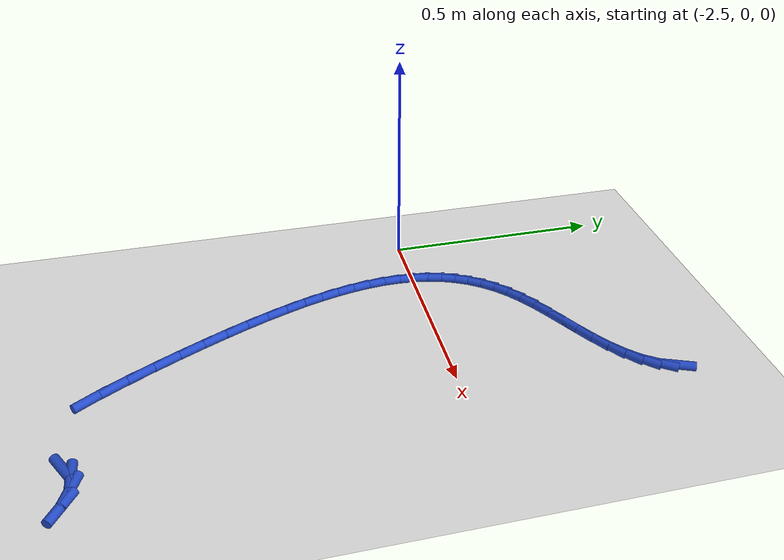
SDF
<sdf version="1.6">
 <world name="default">
  <model name="ground_plane">
   <static>1</static>
   <link name="link">
    <collision name="collision">
     <geometry><plane><normal>0 0 1</normal><size>100 100</size></plane></geometry>
     <surface><friction><ode><mu>100</mu><mu2>50</mu2></ode></friction></surface>
    </collision>
    <visual name="visual">
     <cast_shadows>0</cast_shadows>
     <geometry><plane><normal>0 0 1</normal><size>100 100</size></plane></geometry>
     <material>
      <script><uri>file://media/materials/scripts/gazebo.material</uri><name>Gazebo/WhiteGlow</name></script>
     </material>
    </visual>
   </link>
  </model>
  <model name="line">
   <link name="link_94">
    <pose>-1.9240654374060013 0.4577052013930227 0.01 0 1.57 1.1818128642350767</pose>
    <collision name="collision">
     <geometry><cylinder><radius>0.01</radius><length>0.08</length></cylinder></geometry>
    </collision>
    <visual name="visual">
     <material>
      <script><name>Gazebo/Blue</name><uri>file://media/materials/scripts/gazebo.material</uri></script>
     </material>
     <geometry><cylinder><radius>0.01</radius><length>0.08</length></cylinder></geometry>
    </visual>
   </link>
   <link name="link_95">
    <pose>-1.937158426674228 0.42576072757218647 0.01 0 1.57 0.9611912215345861</pose>
    <collision name="collision">
     <geometry><cylinder><radius>0.01</radius><length>0.08</length></cylinder></geometry>
    </collision>
    <visual name="visual">
     <material>
      <script><name>Gazebo/Blue</name><uri>file://media/materials/scripts/gazebo.material</uri></script>
     </material>
     <geometry><cylinder><radius>0.01</radius><length>0.08</length></cylinder></geometry>
    </visual>
   </link>
   <link name="link_96">
    <pose>-1.9571229756020265 0.3971717885237014 0.01 0 1.57 0.7876121117410307</pose>
    <collision name="collision">
     <geometry><cylinder><radius>0.01</radius><length>0.08</length></cylinder></geometry>
    </collision>
    <visual name="visual">
     <material>
      <script><name>Gazebo/Blue</name><uri>file://media/materials/scripts/gazebo.material</uri></script>
     </material>
     <geometry><cylinder><radius>0.01</radius><length>0.08</length></cylinder></geometry>
    </visual>
   </link>
   <link name="link_97">
    <pose>-1.9827824067121376 0.3713984878161301 0.01 0 1.57 0.6615810921105397</pose>
    <collision name="collision">
     <geometry><cylinder><radius>0.01</radius><length>0.08</length></cylinder></geometry>
    </collision>
    <visual name="visual">
     <material>
      <script><name>Gazebo/Blue</name><uri>file://media/materials/scripts/gazebo.material</uri></script>
     </material>
     <geometry><cylinder><radius>0.01</radius><length>0.08</length></cylinder></geometry>
    </visual>
   </link>
   <link name="link_98">
    <pose>-2.012960042527303 0.3479009290180338 0.01 0 1.57 0.5758351378049846</pose>
    <collision name="collision">
     <geometry><cylinder><radius>0.01</radius><length>0.08</length></cylinder></geometry>
    </collision>
    <visual name="visual">
     <material>
      <script><name>Gazebo/Blue</name><uri>file://media/materials/scripts/gazebo.material</uri></script>
     </material>
     <geometry><cylinder><radius>0.01</radius><length>0.08</length></cylinder></geometry>
    </visual>
   </link>
   <link name="link_99">
    <pose>-2.0464792055702654 0.3261392156979741 0.01 0 1.57 0.5228331763292874</pose>
    <collision name="collision">
     <geometry><cylinder><radius>0.01</radius><length>0.08</length></cylinder></geometry>
    </collision>
    <visual name="visual">
     <material>
      <script><name>Gazebo/Blue</name><uri>file://media/materials/scripts/gazebo.material</uri></script>
     </material>
     <geometry><cylinder><radius>0.01</radius><length>0.08</length></cylinder></geometry>
    </visual>
   </link>
   <link name="link_100">
    <pose>-2.0821632183637644 0.3055734514245132 0.01 0 1.57 0.49738387131073525</pose>
    <collision name="collision">
     <geometry><cylinder><radius>0.01</radius><length>0.08</length></cylinder></geometry>
    </collision>
    <visual name="visual">
     <material>
      <script><name>Gazebo/Blue</name><uri>file://media/materials/scripts/gazebo.material</uri></script>
     </material>
     <geometry><cylinder><radius>0.01</radius><length>0.08</length></cylinder></geometry>
    </visual>
   </link>
   <link name="link_101">
    <pose>-2.1188354034305434 0.2856637397662124 0.01 0 1.57 0.49709137080639376</pose>
    <collision name="collision">
     <geometry><cylinder><radius>0.01</radius><length>0.08</length></cylinder></geometry>
    </collision>
    <visual name="visual">
     <material>
      <script><name>Gazebo/Blue</name><uri>file://media/materials/scripts/gazebo.material</uri></script>
     </material>
     <geometry><cylinder><radius>0.01</radius><length>0.08</length></cylinder></geometry>
    </visual>
   </link>
   <link name="link_102">
    <pose>-2.155319083293342 0.2658701842916339 0.01 0 1.57 0.5223511403534886</pose>
    <collision name="collision">
     <geometry><cylinder><radius>0.01</radius><length>0.08</length></cylinder></geometry>
    </collision>
    <visual name="visual">
     <material>
      <script><name>Gazebo/Blue</name><uri>file://media/materials/scripts/gazebo.material</uri></script>
     </material>
     <geometry><cylinder><radius>0.01</radius><length>0.08</length></cylinder></geometry>
    </visual>
   </link>
   <link name="link_103">
    <pose>-2.1904375804749043 0.24565288856933898 0.01 0 1.57 0.576507237435643</pose>
    <collision name="collision">
     <geometry><cylinder><radius>0.01</radius><length>0.08</length></cylinder></geometry>
    </collision>
    <visual name="visual">
     <material>
      <script><name>Gazebo/Blue</name><uri>file://media/materials/scripts/gazebo.material</uri></script>
     </material>
     <geometry><cylinder><radius>0.01</radius><length>0.08</length></cylinder></geometry>
    </visual>
   </link>
   <link name="link_104">
    <pose>-2.2230142176057943 0.22447195621348381 0.01 0 1.57 0.6606262016934754</pose>
    <collision name="collision">
     <geometry><cylinder><radius>0.01</radius><length>0.08</length></cylinder></geometry>
    </collision>
    <visual name="visual">
     <material>
      <script><name>Gazebo/Blue</name><uri>file://media/materials/scripts/gazebo.material</uri></script>
     </material>
     <geometry><cylinder><radius>0.01</radius><length>0.08</length></cylinder></geometry>
    </visual>
   </link>
   <link name="link_105">
    <pose>-2.2520878097004258 0.20187861229368806 0.01 0 1.57 0.7581151775812615</pose>
    <collision name="collision">
     <geometry><cylinder><radius>0.01</radius><length>0.08</length></cylinder></geometry>
    </collision>
    <visual name="visual">
     <material>
      <script><name>Gazebo/Blue</name><uri>file://media/materials/scripts/gazebo.material</uri></script>
     </material>
     <geometry><cylinder><radius>0.01</radius><length>0.08</length></cylinder></geometry>
    </visual>
   </link>
   <link name="link_106">
    <pose>-2.2775386956793024 0.17777992221955477 0.01 0 1.57 0.863017551304118</pose>
    <collision name="collision">
     <geometry><cylinder><radius>0.01</radius><length>0.08</length></cylinder></geometry>
    </collision>
    <visual name="visual">
     <material>
      <script><name>Gazebo/Blue</name><uri>file://media/materials/scripts/gazebo.material</uri></script>
     </material>
     <geometry><cylinder><radius>0.01</radius><length>0.08</length></cylinder></geometry>
    </visual>
   </link>
   <link name="link_107">
    <pose>-2.2994526047046553 0.1521698011418697 0.01 0 1.57 0.9732197891117836</pose>
    <collision name="collision">
     <geometry><cylinder><radius>0.01</radius><length>0.08</length></cylinder></geometry>
    </collision>
    <visual name="visual">
     <material>
      <script><name>Gazebo/Blue</name><uri>file://media/materials/scripts/gazebo.material</uri></script>
     </material>
     <geometry><cylinder><radius>0.01</radius><length>0.08</length></cylinder></geometry>
    </visual>
   </link>
   <link name="link_108">
    <pose>-2.3179152659387134 0.1250421642114189 0.01 0 1.57 1.0858390196458974</pose>
    <collision name="collision">
     <geometry><cylinder><radius>0.01</radius><length>0.08</length></cylinder></geometry>
    </collision>
    <visual name="visual">
     <material>
      <script><name>Gazebo/Blue</name><uri>file://media/materials/scripts/gazebo.material</uri></script>
     </material>
     <geometry><cylinder><radius>0.01</radius><length>0.08</length></cylinder></geometry>
    </visual>
   </link>
   <link name="link_109">
    <pose>-2.3330124085437056 0.09639092657898916 0.01 0 1.57 1.1975952260976912</pose>
    <collision name="collision">
     <geometry><cylinder><radius>0.01</radius><length>0.08</length></cylinder></geometry>
    </collision>
    <visual name="visual">
     <material>
      <script><name>Gazebo/Blue</name><uri>file://media/materials/scripts/gazebo.material</uri></script>
     </material>
     <geometry><cylinder><radius>0.01</radius><length>0.08</length></cylinder></geometry>
    </visual>
   </link>
   <link name="link_110">
    <pose>-2.3448297616818623 0.0662100033953661 0.01 0 1.57 1.3053284184634721</pose>
    <collision name="collision">
     <geometry><cylinder><radius>0.01</radius><length>0.08</length></cylinder></geometry>
    </collision>
    <visual name="visual">
     <material>
      <script><name>Gazebo/Blue</name><uri>file://media/materials/scripts/gazebo.material</uri></script>
     </material>
     <geometry><cylinder><radius>0.01</radius><length>0.08</length></cylinder></geometry>
    </visual>
   </link>
   <link name="link_111">
    <pose>-2.3534530545154118 0.03449330981133668 0.01 0 1.57 1.4064706938580218</pose>
    <collision name="collision">
     <geometry><cylinder><radius>0.01</radius><length>0.08</length></cylinder></geometry>
    </collision>
    <visual name="visual">
     <material>
      <script><name>Gazebo/Blue</name><uri>file://media/materials/scripts/gazebo.material</uri></script>
     </material>
     <geometry><cylinder><radius>0.01</radius><length>0.08</length></cylinder></geometry>
    </visual>
   </link>
   <link name="link_112">
    <pose>-2.3589680162065854 0.0012347609776862632 0.01 0 1.57 1.4993121572551107</pose>
    <collision name="collision">
     <geometry><cylinder><radius>0.01</radius><length>0.08</length></cylinder></geometry>
    </collision>
    <visual name="visual">
     <material>
      <script><name>Gazebo/Blue</name><uri>file://media/materials/scripts/gazebo.material</uri></script>
     </material>
     <geometry><cylinder><radius>0.01</radius><length>0.08</length></cylinder></geometry>
    </visual>
   </link>
   <link name="link_113">
    <pose>-2.3614603759176096 -0.033571727954798035 0.01 0 1.57 -1.558571775582429</pose>
    <collision name="collision">
     <geometry><cylinder><radius>0.01</radius><length>0.08</length></cylinder></geometry>
    </collision>
    <visual name="visual">
     <material>
      <script><name>Gazebo/Blue</name><uri>file://media/materials/scripts/gazebo.material</uri></script>
     </material>
     <geometry><cylinder><radius>0.01</radius><length>0.08</length></cylinder></geometry>
    </visual>
   </link>
   <link name="link_114">
    <pose>-2.3610158628107167 -0.06993224183533085 0.01 0 1.57 -1.484104805852171</pose>
    <collision name="collision">
     <geometry><cylinder><radius>0.01</radius><length>0.08</length></cylinder></geometry>
    </collision>
    <visual name="visual">
     <material>
      <script><name>Gazebo/Blue</name><uri>file://media/materials/scripts/gazebo.material</uri></script>
     </material>
     <geometry><cylinder><radius>0.01</radius><length>0.08</length></cylinder></geometry>
    </visual>
   </link>
   <link name="link_115">
    <pose>-2.357720206048135 -0.10785286551312503 0.01 0 1.57 -1.418489010096228</pose>
    <collision name="collision">
     <geometry><cylinder><radius>0.01</radius><length>0.08</length></cylinder></geometry>
    </collision>
    <visual name="visual">
     <material>
      <script><name>Gazebo/Blue</name><uri>file://media/materials/scripts/gazebo.material</uri></script>
     </material>
     <geometry><cylinder><radius>0.01</radius><length>0.08</length></cylinder></geometry>
    </visual>
   </link>
   <link name="link_116">
    <pose>-2.3516591347920937 -0.14733968383739482 0.01 0 1.57 -1.3610451468670326</pose>
    <collision name="collision">
     <geometry><cylinder><radius>0.01</radius><length>0.08</length></cylinder></geometry>
    </collision>
    <visual name="visual">
     <material>
      <script><name>Gazebo/Blue</name><uri>file://media/materials/scripts/gazebo.material</uri></script>
     </material>
     <geometry><cylinder><radius>0.01</radius><length>0.08</length></cylinder></geometry>
    </visual>
   </link>
   <link name="link_117">
    <pose>-2.3429183782048226 -0.18839878165735505 0.01 0 1.57 -1.3109665392302905</pose>
    <collision name="collision">
     <geometry><cylinder><radius>0.01</radius><length>0.08</length></cylinder></geometry>
    </collision>
    <visual name="visual">
     <material>
      <script><name>Gazebo/Blue</name><uri>file://media/materials/scripts/gazebo.material</uri></script>
     </material>
     <geometry><cylinder><radius>0.01</radius><length>0.08</length></cylinder></geometry>
    </visual>
   </link>
   <link name="link_118">
    <pose>-2.331583665448551 -0.23103624382221738 0.01 0 1.57 -1.2674254951650001</pose>
    <collision name="collision">
     <geometry><cylinder><radius>0.01</radius><length>0.08</length></cylinder></geometry>
    </collision>
    <visual name="visual">
     <material>
      <script><name>Gazebo/Blue</name><uri>file://media/materials/scripts/gazebo.material</uri></script>
     </material>
     <geometry><cylinder><radius>0.01</radius><length>0.08</length></cylinder></geometry>
    </visual>
   </link>
   <link name="link_119">
    <pose>-2.3177407256855096 -0.27525815518119656 0.01 0 1.57 -1.2296349798389827</pose>
    <collision name="collision">
     <geometry><cylinder><radius>0.01</radius><length>0.08</length></cylinder></geometry>
    </collision>
    <visual name="visual">
     <material>
      <script><name>Gazebo/Blue</name><uri>file://media/materials/scripts/gazebo.material</uri></script>
     </material>
     <geometry><cylinder><radius>0.01</radius><length>0.08</length></cylinder></geometry>
    </visual>
   </link>
   <link name="link_120">
    <pose>-2.301475288077926 -0.32107060058350645 0.01 0 1.57 -1.1968790936741789</pose>
    <collision name="collision">
     <geometry><cylinder><radius>0.01</radius><length>0.08</length></cylinder></geometry>
    </collision>
    <visual name="visual">
     <material>
      <script><name>Gazebo/Blue</name><uri>file://media/materials/scripts/gazebo.material</uri></script>
     </material>
     <geometry><cylinder><radius>0.01</radius><length>0.08</length></cylinder></geometry>
    </visual>
   </link>
   <link name="link_121">
    <pose>-2.2828730817880305 -0.3684796648783608 0.01 0 1.57 -1.1685240441898606</pose>
    <collision name="collision">
     <geometry><cylinder><radius>0.01</radius><length>0.08</length></cylinder></geometry>
    </collision>
    <visual name="visual">
     <material>
      <script><name>Gazebo/Blue</name><uri>file://media/materials/scripts/gazebo.material</uri></script>
     </material>
     <geometry><cylinder><radius>0.01</radius><length>0.08</length></cylinder></geometry>
    </visual>
   </link>
   <link name="link_122">
    <pose>-2.2620198359780526 -0.41749143291497465 0.01 0 1.57 -1.1440180197723493</pose>
    <collision name="collision">
     <geometry><cylinder><radius>0.01</radius><length>0.08</length></cylinder></geometry>
    </collision>
    <visual name="visual">
     <material>
      <script><name>Gazebo/Blue</name><uri>file://media/materials/scripts/gazebo.material</uri></script>
     </material>
     <geometry><cylinder><radius>0.01</radius><length>0.08</length></cylinder></geometry>
    </visual>
   </link>
   <link name="link_123">
    <pose>-2.2390012798102217 -0.4681119895425592 0.01 0 1.57 -1.1228854067371667</pose>
    <collision name="collision">
     <geometry><cylinder><radius>0.01</radius><length>0.08</length></cylinder></geometry>
    </collision>
    <visual name="visual">
     <material>
      <script><name>Gazebo/Blue</name><uri>file://media/materials/scripts/gazebo.material</uri></script>
     </material>
     <geometry><cylinder><radius>0.01</radius><length>0.08</length></cylinder></geometry>
    </visual>
   </link>
   <link name="link_124">
    <pose>-2.2139031424467666 -0.5203474196103294 0.01 0 1.57 -1.1047124800439903</pose>
    <collision name="collision">
     <geometry><cylinder><radius>0.01</radius><length>0.08</length></cylinder></geometry>
    </collision>
    <visual name="visual">
     <material>
      <script><name>Gazebo/Blue</name><uri>file://media/materials/scripts/gazebo.material</uri></script>
     </material>
     <geometry><cylinder><radius>0.01</radius><length>0.08</length></cylinder></geometry>
    </visual>
   </link>
   <link name="link_125">
    <pose>-2.186811855943181 -0.5742015880366592 0.01 0 1.57 -1.0874953852189426</pose>
    <collision name="collision">
     <geometry><cylinder><radius>0.01</radius><length>0.08</length></cylinder></geometry>
    </collision>
    <visual name="visual">
     <material>
      <script><name>Gazebo/Blue</name><uri>file://media/materials/scripts/gazebo.material</uri></script>
     </material>
     <geometry><cylinder><radius>0.01</radius><length>0.08</length></cylinder></geometry>
    </visual>
   </link>
   <link name="link_126">
    <pose>-2.1579917457293343 -0.6291165233853153 0.01 0 1.57 -1.066413530576865</pose>
    <collision name="collision">
     <geometry><cylinder><radius>0.01</radius><length>0.08</length></cylinder></geometry>
    </collision>
    <visual name="visual">
     <material>
      <script><name>Gazebo/Blue</name><uri>file://media/materials/scripts/gazebo.material</uri></script>
     </material>
     <geometry><cylinder><radius>0.01</radius><length>0.08</length></cylinder></geometry>
    </visual>
   </link>
   <link name="link_127">
    <pose>-2.128119259105518 -0.6832326596545839 0.01 0 1.57 -1.0386512534489802</pose>
    <collision name="collision">
     <geometry><cylinder><radius>0.01</radius><length>0.08</length></cylinder></geometry>
    </collision>
    <visual name="visual">
     <material>
      <script><name>Gazebo/Blue</name><uri>file://media/materials/scripts/gazebo.material</uri></script>
     </material>
     <geometry><cylinder><radius>0.01</radius><length>0.08</length></cylinder></geometry>
    </visual>
   </link>
   <link name="link_128">
    <pose>-2.0979290436154168 -0.73450661841747 0.01 0 1.57 -1.0001885961778378</pose>
    <collision name="collision">
     <geometry><cylinder><radius>0.01</radius><length>0.08</length></cylinder></geometry>
    </collision>
    <visual name="visual">
     <material>
      <script><name>Gazebo/Blue</name><uri>file://media/materials/scripts/gazebo.material</uri></script>
     </material>
     <geometry><cylinder><radius>0.01</radius><length>0.08</length></cylinder></geometry>
    </visual>
   </link>
   <link name="link_137">
    <pose>-1.9145944052586101 -0.77550976820107 0.01 0 1.57 0.511853325075573</pose>
    <collision name="collision">
     <geometry><cylinder><radius>0.01</radius><length>0.08</length></cylinder></geometry>
    </collision>
    <visual name="visual">
     <material>
      <script><name>Gazebo/Blue</name><uri>file://media/materials/scripts/gazebo.material</uri></script>
     </material>
     <geometry><cylinder><radius>0.01</radius><length>0.08</length></cylinder></geometry>
    </visual>
   </link>
   <link name="link_138">
    <pose>-1.8908379403572355 -0.7621635182831459 0.01 0 1.57 -0.02399619710246765</pose>
    <collision name="collision">
     <geometry><cylinder><radius>0.01</radius><length>0.08</length></cylinder></geometry>
    </collision>
    <visual name="visual">
     <material>
      <script><name>Gazebo/Blue</name><uri>file://media/materials/scripts/gazebo.material</uri></script>
     </material>
     <geometry><cylinder><radius>0.01</radius><length>0.08</length></cylinder></geometry>
    </visual>
   </link>
   <link name="link_139">
    <pose>-1.8606228671852518 -0.7628887043313897 0.01 0 1.57 -0.3596952023840353</pose>
    <collision name="collision">
     <geometry><cylinder><radius>0.01</radius><length>0.08</length></cylinder></geometry>
    </collision>
    <visual name="visual">
     <material>
      <script><name>Gazebo/Blue</name><uri>file://media/materials/scripts/gazebo.material</uri></script>
     </material>
     <geometry><cylinder><radius>0.01</radius><length>0.08</length></cylinder></geometry>
    </visual>
   </link>
   <link name="link_140">
    <pose>-1.825838377182886 -0.7759695826053031 0.01 0 1.57 -0.5644393385112154</pose>
    <collision name="collision">
     <geometry><cylinder><radius>0.01</radius><length>0.08</length></cylinder></geometry>
    </collision>
    <visual name="visual">
     <material>
      <script><name>Gazebo/Blue</name><uri>file://media/materials/scripts/gazebo.material</uri></script>
     </material>
     <geometry><cylinder><radius>0.01</radius><length>0.08</length></cylinder></geometry>
    </visual>
   </link>
  </model>
 </world>
</sdf>
